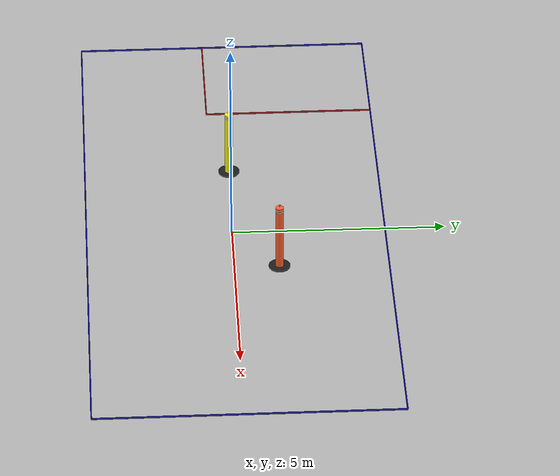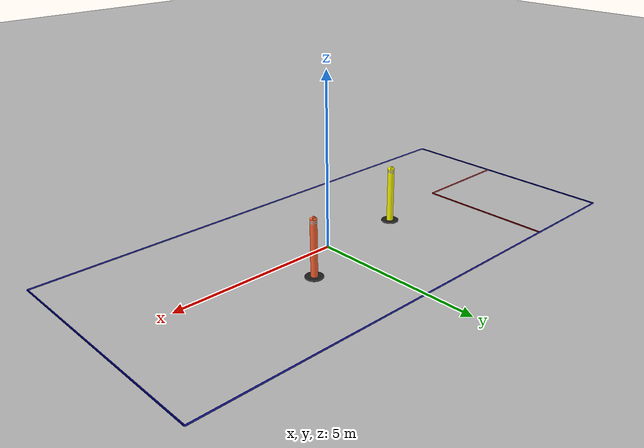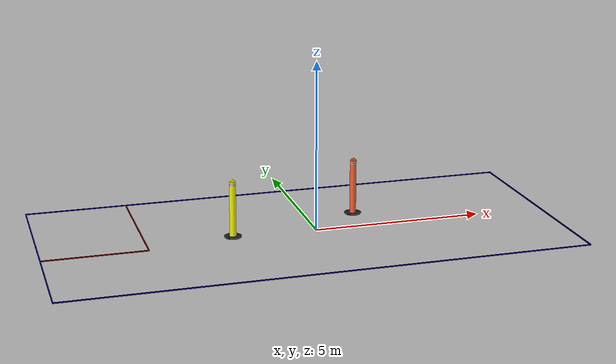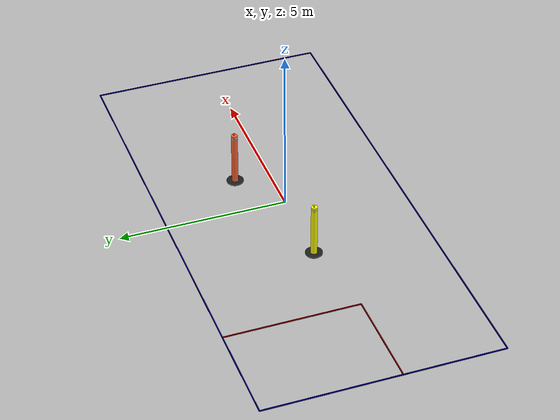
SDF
<sdf version="1.6">
 <world name="default">
  <light name="sun" type="directional">
   <pose>0 0 10 0 -0 0</pose>
   <diffuse>0.8 0.8 0.8 1</diffuse>
   <specular>0.1 0.1 0.1 1</specular>
   <attenuation>
    <range>1000</range>
    <constant>0.9</constant>
    <linear>0.01</linear>
    <quadratic>0.001</quadratic>
   </attenuation>
   <direction>-0.5 0.5 -1</direction>
  </light>
  <gravity>0 0 -9.8</gravity>
  <magnetic_field>6e-06 2.3e-05 -4.2e-05</magnetic_field>
  <atmosphere type="adiabatic"/>
  <physics name="default_physics" default="0" type="ode">
   <max_step_size>0.001</max_step_size>
   <real_time_factor>1</real_time_factor>
   <real_time_update_rate>1000</real_time_update_rate>
  </physics>
  <scene><ambient>0.4 0.4 0.4 1</ambient><background>0.7 0.7 0.7 1</background><shadows>1</shadows></scene>
  <spherical_coordinates>
   <surface_model>EARTH_WGS84</surface_model>
   <latitude_deg>0</latitude_deg>
   <longitude_deg>0</longitude_deg>
   <elevation>0</elevation>
   <heading_deg>0</heading_deg>
  </spherical_coordinates>
  <model name="brick_plane">
   <static>1</static>
   <link name="link">
    <collision name="collision">
     <geometry><plane><normal>0 0 1</normal><size>50 50</size></plane></geometry>
     <surface><friction><ode><mu>100</mu><mu2>50</mu2></ode></friction></surface>
    </collision>
    <visual name="visual">
     <cast_shadows>0</cast_shadows>
     <pose>0 0 -0.04 0 -0 0</pose>
     <geometry><mesh><uri>model://brick_plane/meshes/BrickRoad.dae</uri></mesh></geometry>
    </visual>
   </link>
   <pose>-0.038793 -0.127962 0 0 -0 0</pose>
  </model>
  <light name="user_point_light_0" type="point">
   <pose>-40.2877 36.9378 1 0 -0 0</pose>
   <diffuse>0.5 0.5 0.5 1</diffuse>
   <specular>0.1 0.1 0.1 1</specular>
   <attenuation>
    <range>20</range>
    <constant>0.5</constant>
    <linear>0.01</linear>
    <quadratic>0.001</quadratic>
   </attenuation>
   <cast_shadows>0</cast_shadows>
   <direction>0 0 -1</direction>
  </light>
  <light name="user_point_light_0_clone" type="point">
   <pose>-43.3445 16.5003 10 0 -0 0</pose>
   <diffuse>1 1 1 1</diffuse>
   <specular>1 1 1 1</specular>
   <direction>0 0 -1</direction>
   <attenuation>
    <range>100000</range>
    <constant>0.5</constant>
    <linear>0.01</linear>
    <quadratic>0.001</quadratic>
   </attenuation>
  </light>
  <light name="user_point_light_0_clone_0" type="point">
   <pose>-41.8744 -4.62896 10 0 -0 0</pose>
   <diffuse>1 1 1 1</diffuse>
   <specular>1 1 1 1</specular>
   <direction>0 0 -1</direction>
   <attenuation>
    <range>100000</range>
    <constant>0.5</constant>
    <linear>0.01</linear>
    <quadratic>0.001</quadratic>
   </attenuation>
  </light>
  <light name="user_point_light_0_clone_1" type="point">
   <pose>-45.3384 -27.6087 10 0 -0 0</pose>
   <diffuse>1 1 1 1</diffuse>
   <specular>1 1 1 1</specular>
   <direction>0 0 -1</direction>
   <attenuation>
    <range>100000</range>
    <constant>0.5</constant>
    <linear>0.01</linear>
    <quadratic>0.001</quadratic>
   </attenuation>
  </light>
  <light name="user_point_light_0_clone_2" type="point">
   <pose>-41.0308 -51.4934 10 0 -0 0</pose>
   <diffuse>1 1 1 1</diffuse>
   <specular>1 1 1 1</specular>
   <direction>0 0 -1</direction>
   <attenuation>
    <range>100000</range>
    <constant>0.5</constant>
    <linear>0.01</linear>
    <quadratic>0.001</quadratic>
   </attenuation>
  </light>
  <light name="user_point_light_0_clone_3" type="point">
   <pose>-13.091 -48.6057 10 0 -0 0</pose>
   <diffuse>1 1 1 1</diffuse>
   <specular>1 1 1 1</specular>
   <direction>0 0 -1</direction>
   <attenuation>
    <range>100000</range>
    <constant>0.5</constant>
    <linear>0.01</linear>
    <quadratic>0.001</quadratic>
   </attenuation>
  </light>
  <light name="user_point_light_0_clone_4" type="point">
   <pose>17.8273 -50.2126 10 0 -0 0</pose>
   <diffuse>1 1 1 1</diffuse>
   <specular>1 1 1 1</specular>
   <direction>0 0 -1</direction>
   <attenuation>
    <range>100000</range>
    <constant>0.5</constant>
    <linear>0.01</linear>
    <quadratic>0.001</quadratic>
   </attenuation>
  </light>
  <light name="user_point_light_0_clone_5" type="point">
   <pose>43.0105 -50.5018 10 0 -0 0</pose>
   <diffuse>1 1 1 1</diffuse>
   <specular>1 1 1 1</specular>
   <direction>0 0 -1</direction>
   <attenuation>
    <range>100000</range>
    <constant>0.5</constant>
    <linear>0.01</linear>
    <quadratic>0.001</quadratic>
   </attenuation>
  </light>
  <light name="user_point_light_0_clone_6" type="point">
   <pose>-30.8096 43.6215 10 0 -0 0</pose>
   <diffuse>1 1 1 1</diffuse>
   <specular>1 1 1 1</specular>
   <direction>0 0 -1</direction>
   <attenuation>
    <range>100000</range>
    <constant>0.5</constant>
    <linear>0.01</linear>
    <quadratic>0.001</quadratic>
   </attenuation>
  </light>
  <light name="user_point_light_0_clone_7" type="point">
   <pose>-6.06965 44.6895 10 0 -0 0</pose>
   <diffuse>1 1 1 1</diffuse>
   <specular>1 1 1 1</specular>
   <direction>0 0 -1</direction>
   <attenuation>
    <range>100000</range>
    <constant>0.5</constant>
    <linear>0.01</linear>
    <quadratic>0.001</quadratic>
   </attenuation>
  </light>
  <light name="user_point_light_0_clone_8" type="point">
   <pose>12.7263 46.5664 10 0 -0 0</pose>
   <diffuse>1 1 1 1</diffuse>
   <specular>1 1 1 1</specular>
   <direction>0 0 -1</direction>
   <attenuation>
    <range>100000</range>
    <constant>0.5</constant>
    <linear>0.01</linear>
    <quadratic>0.001</quadratic>
   </attenuation>
  </light>
  <light name="user_point_light_0_clone_9" type="point">
   <pose>31.1126 44.5953 10 0 -0 0</pose>
   <diffuse>1 1 1 1</diffuse>
   <specular>1 1 1 1</specular>
   <direction>0 0 -1</direction>
   <attenuation>
    <range>100000</range>
    <constant>0.5</constant>
    <linear>0.01</linear>
    <quadratic>0.001</quadratic>
   </attenuation>
  </light>
  <light name="user_point_light_0_clone_10" type="point">
   <pose>48.6896 31.6 10 0 -0 0</pose>
   <diffuse>1 1 1 1</diffuse>
   <specular>1 1 1 1</specular>
   <direction>0 0 -1</direction>
   <attenuation>
    <range>100000</range>
    <constant>0.5</constant>
    <linear>0.01</linear>
    <quadratic>0.001</quadratic>
   </attenuation>
  </light>
  <light name="user_point_light_0_clone_11" type="point">
   <pose>54.0783 8.97523 10 0 -0 0</pose>
   <diffuse>1 1 1 1</diffuse>
   <specular>1 1 1 1</specular>
   <direction>0 0 -1</direction>
   <attenuation>
    <range>100000</range>
    <constant>0.5</constant>
    <linear>0.01</linear>
    <quadratic>0.001</quadratic>
   </attenuation>
  </light>
  <light name="user_point_light_0_clone_12" type="point">
   <pose>59.1715 -20.1842 10 0 -0 0</pose>
   <diffuse>1 1 1 1</diffuse>
   <specular>1 1 1 1</specular>
   <direction>0 0 -1</direction>
   <attenuation>
    <range>100000</range>
    <constant>0.5</constant>
    <linear>0.01</linear>
    <quadratic>0.001</quadratic>
   </attenuation>
  </light>
  <light name="user_point_light_0_clone_13" type="point">
   <pose>56.6391 -41.8663 10 0 -0 0</pose>
   <diffuse>1 1 1 1</diffuse>
   <specular>1 1 1 1</specular>
   <direction>0 0 -1</direction>
   <attenuation>
    <range>100000</range>
    <constant>0.5</constant>
    <linear>0.01</linear>
    <quadratic>0.001</quadratic>
   </attenuation>
  </light>
  <model name="triple-I">
   <include><uri>model://triple-I</uri></include>
   <pose>-0.465032 -1.9092 0.030503 -0.000121 6.3e-05 0.005487</pose>
  </model>
  <model name="pylon_yellow">
   <include><uri>model://pylon_yellow</uri></include>
   <pose>-2.47353 0.023057 0 0 0 -8.1e-05</pose>
  </model>
  <model name="pylon_orange">
   <include><uri>model://pylon_orange</uri></include>
   <pose>1.44449 1.05156 0 0 0 -8.1e-05</pose>
  </model>
 </world>
</sdf>

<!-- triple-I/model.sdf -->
<sdf version='1.4'>
  <model name="triple-I">
    <static>true</static>

    <link name='right_side'>
      <pose>0 -1.5 0 0 0 1.5707</pose>
      <collision name='rcollision'>
        <geometry>
         <box>
            <size>0.03 15 0.03</size>
         </box>
        </geometry>
      </collision>

      <visual name='rvisual'>
        <geometry>
          <box>
            <size>0.03 15 0.03</size>
         </box>
        </geometry>
        <material>
          <ambient>0.0 0.0 0.5 1.0</ambient>
          <diffuse>0.0 0.0 0.5 1.0</diffuse>
          <specular>0.0 0.0 0.5 1.0</specular>
          <emissive>0.0 0.0 0.5 1.0</emissive>
        </material>
      </visual>
    </link>

    <link name='left_side'>
      <pose>0 5.5 0 0 0 1.5707</pose>
      <collision name='lcollision'>
        <geometry>
          <box>
            <size>0.03 15 0.03</size>
         </box>
        </geometry>
      </collision>

      <visual name='lvisual'>
        <geometry>
          <box>
            <size>0.03 15 0.03</size>
         </box>
        </geometry>
        <material>
          <ambient>0.0 0.0 0.5 1.0</ambient>
          <diffuse>0.0 0.0 0.5 1.0</diffuse>
          <specular>0.0 0.0 0.5 1.0</specular>
          <emissive>0.0 0.0 0.5 1.0</emissive>
        </material>
      </visual>
    </link>

    <link name='manuevering_side'>
      <pose>7.5 2 0 0 0 0</pose>
      <collision name='mcollision'>
        <geometry>
          <box>
            <size>0.03 7 0.03</size>
         </box>
        </geometry>
      </collision>

      <visual name='mvisual'>
        <geometry>
          <box>
            <size>0.03 7 0.03</size>
         </box>
        </geometry>
        <material>
          <ambient>0.0 0.0 0.5 1.0</ambient>
          <diffuse>0.0 0.0 0.5 1.0</diffuse>
          <specular>0.0 0.0 0.5 1.0</specular>
          <emissive>0.0 0.0 0.5 1.0</emissive>
        </material>
      </visual>
    </link>

    <link name='garage_side'>
      <pose>-7.5 2 0 0 0 0</pose>
      <collision name='gcollision'>
        <geometry>
          <box>
            <size>0.03 7 0.03</size>
         </box>
        </geometry>
      </collision>

      <visual name='gvisual'>
        <geometry>
          <box>
            <size>0.03 7 .03</size>
         </box>
        </geometry>
        <material>
          <ambient>0.0 0.0 0.5 1.0</ambient>
          <diffuse>0.0 0.0 0.5 1.0</diffuse>
          <specular>0.0 0.0 0.5 1.0</specular>
          <emissive>0.0 0.0 0.5 1.0</emissive>
        </material>
      </visual>
    </link>

    <link name='garage_boundary0'>
      <pose>-4.5 3.5 0 0 0 0</pose>

      <visual name='g0visual'>
        <geometry>
          <box>
            <size>0.03 4 0.03</size>
         </box>
        </geometry>
        <material>
          <ambient>0.5 0.0 0 1.0</ambient>
          <diffuse>0.5 0.0 0 1.0</diffuse>
          <specular>0.5 0.0 0 1.0</specular>
          <emissive>0.5 0.0 0 1.0</emissive>
        </material>
      </visual>
    </link>

    <link name='garage_boundary1'>
      <pose>-6 1.5 0 0 0 1.5707</pose>

      <visual name='g1visual'>
        <geometry>
          <box>
            <size>0.03 3 0.03</size>
         </box>
        </geometry>
        <material>
          <ambient>0.5 0.0 0 1.0</ambient>
          <diffuse>0.5 0.0 0 1.0</diffuse>
          <specular>0.5 0.0 0 1.0</specular>
          <emissive>0.5 0.0 0 1.0</emissive>
        </material>
      </visual>
    </link>

    <joint type='fixed' name='gr'>
      <child>right_side</child>
      <parent>garage_side</parent>
    </joint>
    <joint type='fixed' name='gl'>
      <child>left_side</child>
      <parent>garage_side</parent>
    </joint>
    <joint type='fixed' name='mr'>
      <child>right_side</child>
      <parent>manuevering_side</parent>
    </joint>
    <joint type='fixed' name='ml'>
      <child>manuevering_side</child>
      <parent>left_side</parent>
    </joint>

  </model>
</sdf>

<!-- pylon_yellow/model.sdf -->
<sdf version='1.4'>
  <model name="pylon_yellow">
    <static>false</static>

    <link name='pylon_body'>

      <inertial>
        <mass>0.8</mass>
      </inertial>

      <pose>0 0 .775 0 0 0</pose>
      <collision name='collision'>
        <geometry>
          <cylinder>
            <radius>.05</radius>
            <length>1.5</length>
          </cylinder>
        </geometry>
      </collision>

      <visual name='visual'>
        <pose>0 0 -.75 0 0 0</pose>
        <geometry>
          <mesh>
            <uri>model://pylon_yellow/meshes/YellowPylon.dae</uri>
          </mesh>
        </geometry>

      </visual>

    </link>
    <link name='pylon_base'>

      <inertial>
        <mass>3.62</mass>
      </inertial>

      <pose>0 0 .025 0 0 0</pose>
      <collision name='collision'>
        <geometry>
          <cylinder>
            <radius>.25</radius>
            <length>.05</length>
          </cylinder>
        </geometry>
      </collision>

    </link>

    <joint name="base_body" type="fixed">
      <parent>pylon_base</parent>
      <child>pylon_body</child>
      <pose>0 0 0 0 0 0</pose>

    </joint>

  </model>
</sdf>

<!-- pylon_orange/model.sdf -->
<sdf version='1.4'>
  <model name="pylon_orange">
    <static>false</static>

    <link name='pylon_body'>

      <inertial>
        <mass>0.8</mass>
      </inertial>

      <pose>0 0 .775 0 0 0</pose>
      <collision name='collision'>
        <geometry>
          <cylinder>
            <radius>.05</radius>
            <length>1.5</length>
          </cylinder>
        </geometry>
      </collision>

      <visual name='visual'>
        <pose>0 0 -.75 0 0 0</pose>
        <geometry>
          <mesh>
            <uri>model://pylon_orange/meshes/OrangePylon.dae</uri>
          </mesh>
        </geometry>

      </visual>

    </link>
    <link name='pylon_base'>

      <inertial>
        <mass>3.62</mass>
      </inertial>

      <pose>0 0 .025 0 0 0</pose>
      <collision name='collision'>
        <geometry>
          <cylinder>
            <radius>.25</radius>
            <length>.05</length>
          </cylinder>
        </geometry>
      </collision>

    </link>

    <joint name="base_body" type="fixed">
      <parent>pylon_base</parent>
      <child>pylon_body</child>
      <pose>0 0 0 0 0 0</pose>

    </joint>

  </model>
</sdf>
